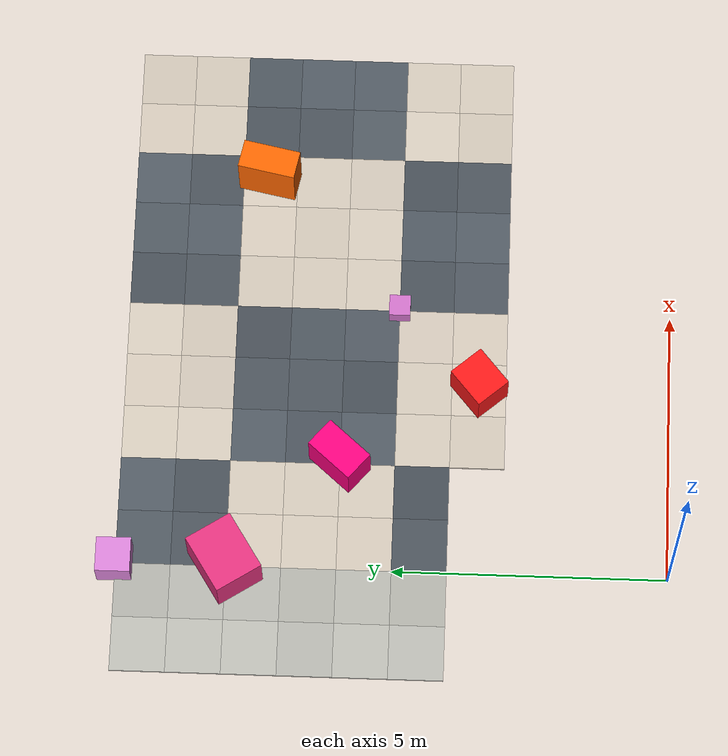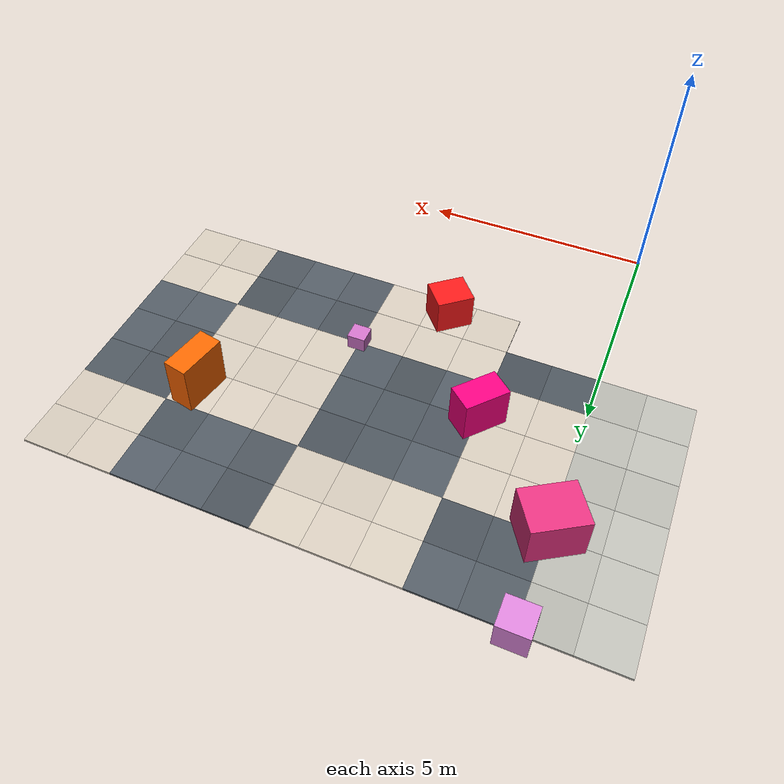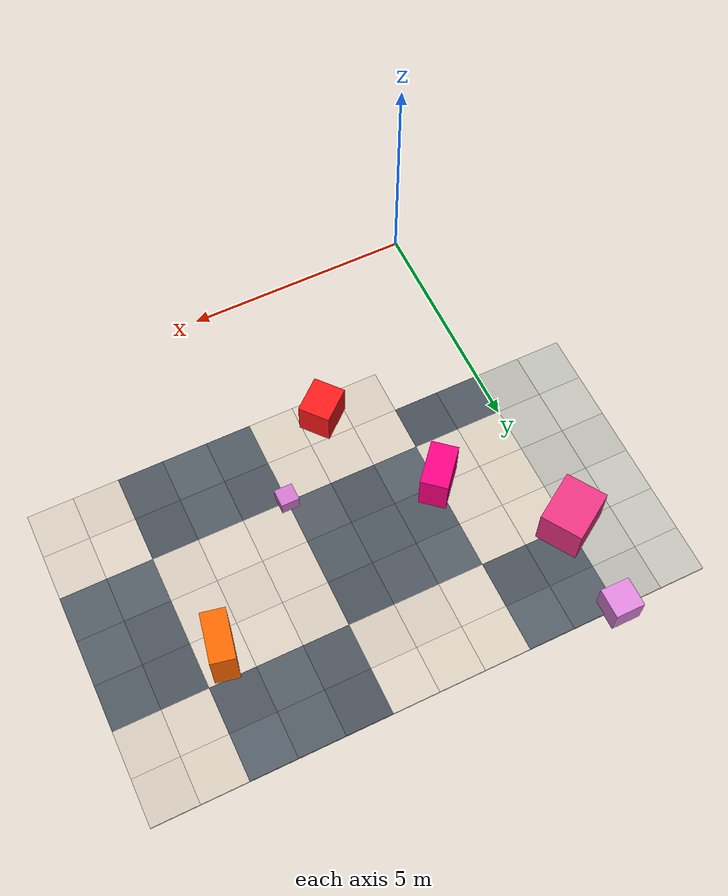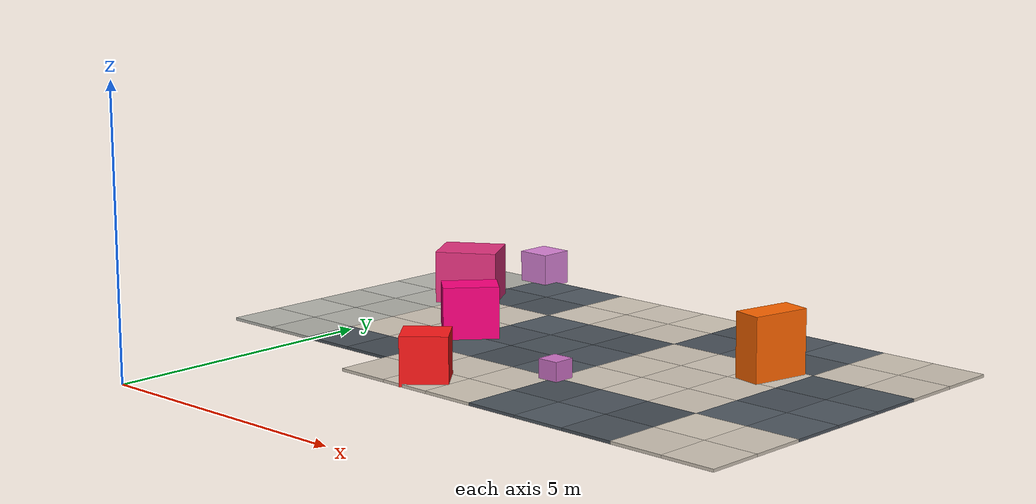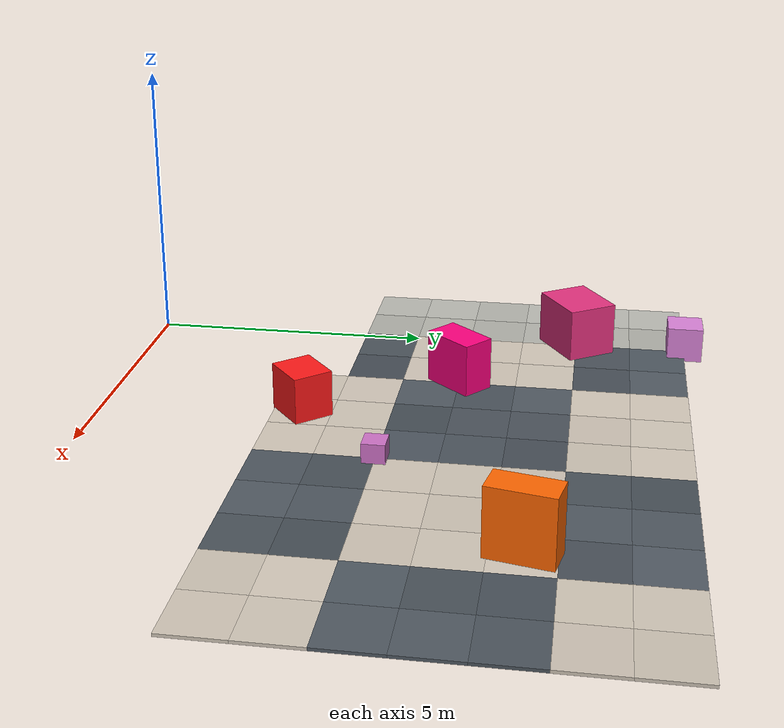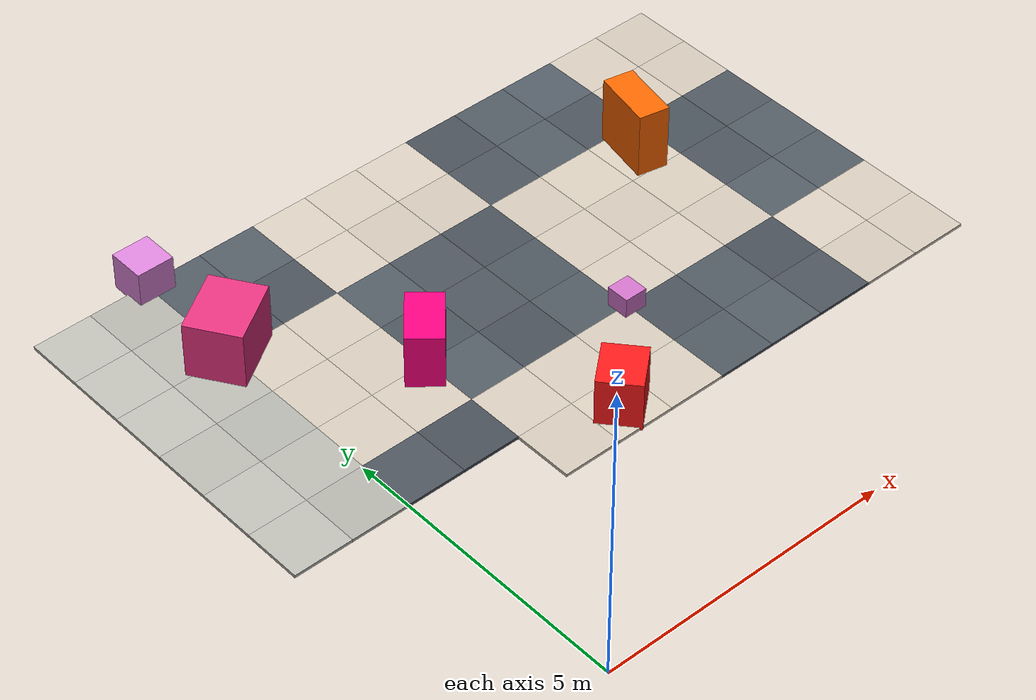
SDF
<sdf version="1.9">
 <world name="competition_world">
  <model name="t_13_12">
   <static>true</static>
   <pose>2.500 3.500 0.025 0 0 0</pose>
   <link name="link">
    <collision name="c"><geometry><box><size>1.00 1.00 0.05</size></box></geometry></collision>
    <visual name="v">
     <geometry><box><size>1.00 1.00 0.05</size></box></geometry>
     <material>
      <ambient>0.813 0.773 0.716 1</ambient>
      <diffuse>0.813 0.773 0.716 1</diffuse>
      <specular>0.060 0.060 0.060 1</specular>
     </material>
    </visual>
   </link>
  </model>
  <model name="t_13_13">
   <static>true</static>
   <pose>3.500 3.500 0.025 0 0 0</pose>
   <link name="link">
    <collision name="c"><geometry><box><size>1.00 1.00 0.05</size></box></geometry></collision>
    <visual name="v">
     <geometry><box><size>1.00 1.00 0.05</size></box></geometry>
     <material>
      <ambient>0.839 0.797 0.738 1</ambient>
      <diffuse>0.839 0.797 0.738 1</diffuse>
      <specular>0.060 0.060 0.060 1</specular>
     </material>
    </visual>
   </link>
  </model>
  <model name="t_13_14">
   <static>true</static>
   <pose>4.500 3.500 0.025 0 0 0</pose>
   <link name="link">
    <collision name="c"><geometry><box><size>1.00 1.00 0.05</size></box></geometry></collision>
    <visual name="v">
     <geometry><box><size>1.00 1.00 0.05</size></box></geometry>
     <material>
      <ambient>0.826 0.785 0.727 1</ambient>
      <diffuse>0.826 0.785 0.727 1</diffuse>
      <specular>0.060 0.060 0.060 1</specular>
     </material>
    </visual>
   </link>
  </model>
  <model name="t_13_15">
   <static>true</static>
   <pose>5.500 3.500 0.025 0 0 0</pose>
   <link name="link">
    <collision name="c"><geometry><box><size>1.00 1.00 0.05</size></box></geometry></collision>
    <visual name="v">
     <geometry><box><size>1.00 1.00 0.05</size></box></geometry>
     <material>
      <ambient>0.302 0.336 0.369 1</ambient>
      <diffuse>0.302 0.336 0.369 1</diffuse>
      <specular>0.060 0.060 0.060 1</specular>
     </material>
    </visual>
   </link>
  </model>
  <model name="t_13_16">
   <static>true</static>
   <pose>6.500 3.500 0.025 0 0 0</pose>
   <link name="link">
    <collision name="c"><geometry><box><size>1.00 1.00 0.05</size></box></geometry></collision>
    <visual name="v">
     <geometry><box><size>1.00 1.00 0.05</size></box></geometry>
     <material>
      <ambient>0.316 0.352 0.387 1</ambient>
      <diffuse>0.316 0.352 0.387 1</diffuse>
      <specular>0.060 0.060 0.060 1</specular>
     </material>
    </visual>
   </link>
  </model>
  <model name="t_13_17">
   <static>true</static>
   <pose>7.500 3.500 0.025 0 0 0</pose>
   <link name="link">
    <collision name="c"><geometry><box><size>1.00 1.00 0.05</size></box></geometry></collision>
    <visual name="v">
     <geometry><box><size>1.00 1.00 0.05</size></box></geometry>
     <material>
      <ambient>0.289 0.321 0.353 1</ambient>
      <diffuse>0.289 0.321 0.353 1</diffuse>
      <specular>0.060 0.060 0.060 1</specular>
     </material>
    </visual>
   </link>
  </model>
  <model name="t_13_18">
   <static>true</static>
   <pose>8.500 3.500 0.025 0 0 0</pose>
   <link name="link">
    <collision name="c"><geometry><box><size>1.00 1.00 0.05</size></box></geometry></collision>
    <visual name="v">
     <geometry><box><size>1.00 1.00 0.05</size></box></geometry>
     <material>
      <ambient>0.806 0.766 0.709 1</ambient>
      <diffuse>0.806 0.766 0.709 1</diffuse>
      <specular>0.060 0.060 0.060 1</specular>
     </material>
    </visual>
   </link>
  </model>
  <model name="t_13_19">
   <static>true</static>
   <pose>9.500 3.500 0.025 0 0 0</pose>
   <link name="link">
    <collision name="c"><geometry><box><size>1.00 1.00 0.05</size></box></geometry></collision>
    <visual name="v">
     <geometry><box><size>1.00 1.00 0.05</size></box></geometry>
     <material>
      <ambient>0.818 0.777 0.720 1</ambient>
      <diffuse>0.818 0.777 0.720 1</diffuse>
      <specular>0.060 0.060 0.060 1</specular>
     </material>
    </visual>
   </link>
  </model>
  <model name="t_14_08">
   <static>true</static>
   <pose>-1.500 4.500 0.025 0 0 0</pose>
   <link name="link">
    <collision name="c"><geometry><box><size>1.00 1.00 0.05</size></box></geometry></collision>
    <visual name="v">
     <geometry><box><size>1.00 1.00 0.05</size></box></geometry>
     <material>
      <ambient>0.727 0.727 0.697 1</ambient>
      <diffuse>0.727 0.727 0.697 1</diffuse>
      <specular>0.060 0.060 0.060 1</specular>
     </material>
    </visual>
   </link>
  </model>
  <model name="t_14_09">
   <static>true</static>
   <pose>-0.500 4.500 0.025 0 0 0</pose>
   <link name="link">
    <collision name="c"><geometry><box><size>1.00 1.00 0.05</size></box></geometry></collision>
    <visual name="v">
     <geometry><box><size>1.00 1.00 0.05</size></box></geometry>
     <material>
      <ambient>0.690 0.690 0.660 1</ambient>
      <diffuse>0.690 0.690 0.660 1</diffuse>
      <specular>0.060 0.060 0.060 1</specular>
     </material>
    </visual>
   </link>
  </model>
  <model name="t_14_10">
   <static>true</static>
   <pose>0.500 4.500 0.025 0 0 0</pose>
   <link name="link">
    <collision name="c"><geometry><box><size>1.00 1.00 0.05</size></box></geometry></collision>
    <visual name="v">
     <geometry><box><size>1.00 1.00 0.05</size></box></geometry>
     <material>
      <ambient>0.293 0.326 0.358 1</ambient>
      <diffuse>0.293 0.326 0.358 1</diffuse>
      <specular>0.060 0.060 0.060 1</specular>
     </material>
    </visual>
   </link>
  </model>
  <model name="t_14_11">
   <static>true</static>
   <pose>1.500 4.500 0.025 0 0 0</pose>
   <link name="link">
    <collision name="c"><geometry><box><size>1.00 1.00 0.05</size></box></geometry></collision>
    <visual name="v">
     <geometry><box><size>1.00 1.00 0.05</size></box></geometry>
     <material>
      <ambient>0.271 0.301 0.332 1</ambient>
      <diffuse>0.271 0.301 0.332 1</diffuse>
      <specular>0.060 0.060 0.060 1</specular>
     </material>
    </visual>
   </link>
  </model>
  <model name="t_14_12">
   <static>true</static>
   <pose>2.500 4.500 0.025 0 0 0</pose>
   <link name="link">
    <collision name="c"><geometry><box><size>1.00 1.00 0.05</size></box></geometry></collision>
    <visual name="v">
     <geometry><box><size>1.00 1.00 0.05</size></box></geometry>
     <material>
      <ambient>0.824 0.782 0.725 1</ambient>
      <diffuse>0.824 0.782 0.725 1</diffuse>
      <specular>0.060 0.060 0.060 1</specular>
     </material>
    </visual>
   </link>
  </model>
  <model name="t_14_13">
   <static>true</static>
   <pose>3.500 4.500 0.025 0 0 0</pose>
   <link name="link">
    <collision name="c"><geometry><box><size>1.00 1.00 0.05</size></box></geometry></collision>
    <visual name="v">
     <geometry><box><size>1.00 1.00 0.05</size></box></geometry>
     <material>
      <ambient>0.820 0.779 0.722 1</ambient>
      <diffuse>0.820 0.779 0.722 1</diffuse>
      <specular>0.060 0.060 0.060 1</specular>
     </material>
    </visual>
   </link>
  </model>
  <model name="t_14_14">
   <static>true</static>
   <pose>4.500 4.500 0.025 0 0 0</pose>
   <link name="link">
    <collision name="c"><geometry><box><size>1.00 1.00 0.05</size></box></geometry></collision>
    <visual name="v">
     <geometry><box><size>1.00 1.00 0.05</size></box></geometry>
     <material>
      <ambient>0.817 0.776 0.719 1</ambient>
      <diffuse>0.817 0.776 0.719 1</diffuse>
      <specular>0.060 0.060 0.060 1</specular>
     </material>
    </visual>
   </link>
  </model>
  <model name="t_14_15">
   <static>true</static>
   <pose>5.500 4.500 0.025 0 0 0</pose>
   <link name="link">
    <collision name="c"><geometry><box><size>1.00 1.00 0.05</size></box></geometry></collision>
    <visual name="v">
     <geometry><box><size>1.00 1.00 0.05</size></box></geometry>
     <material>
      <ambient>0.281 0.312 0.343 1</ambient>
      <diffuse>0.281 0.312 0.343 1</diffuse>
      <specular>0.060 0.060 0.060 1</specular>
     </material>
    </visual>
   </link>
  </model>
  <model name="t_14_16">
   <static>true</static>
   <pose>6.500 4.500 0.025 0 0 0</pose>
   <link name="link">
    <collision name="c"><geometry><box><size>1.00 1.00 0.05</size></box></geometry></collision>
    <visual name="v">
     <geometry><box><size>1.00 1.00 0.05</size></box></geometry>
     <material>
      <ambient>0.304 0.338 0.372 1</ambient>
      <diffuse>0.304 0.338 0.372 1</diffuse>
      <specular>0.060 0.060 0.060 1</specular>
     </material>
    </visual>
   </link>
  </model>
  <model name="t_14_17">
   <static>true</static>
   <pose>7.500 4.500 0.025 0 0 0</pose>
   <link name="link">
    <collision name="c"><geometry><box><size>1.00 1.00 0.05</size></box></geometry></collision>
    <visual name="v">
     <geometry><box><size>1.00 1.00 0.05</size></box></geometry>
     <material>
      <ambient>0.272 0.302 0.332 1</ambient>
      <diffuse>0.272 0.302 0.332 1</diffuse>
      <specular>0.060 0.060 0.060 1</specular>
     </material>
    </visual>
   </link>
  </model>
  <model name="t_14_18">
   <static>true</static>
   <pose>8.500 4.500 0.025 0 0 0</pose>
   <link name="link">
    <collision name="c"><geometry><box><size>1.00 1.00 0.05</size></box></geometry></collision>
    <visual name="v">
     <geometry><box><size>1.00 1.00 0.05</size></box></geometry>
     <material>
      <ambient>0.837 0.795 0.737 1</ambient>
      <diffuse>0.837 0.795 0.737 1</diffuse>
      <specular>0.060 0.060 0.060 1</specular>
     </material>
    </visual>
   </link>
  </model>
  <model name="t_14_19">
   <static>true</static>
   <pose>9.500 4.500 0.025 0 0 0</pose>
   <link name="link">
    <collision name="c"><geometry><box><size>1.00 1.00 0.05</size></box></geometry></collision>
    <visual name="v">
     <geometry><box><size>1.00 1.00 0.05</size></box></geometry>
     <material>
      <ambient>0.819 0.778 0.721 1</ambient>
      <diffuse>0.819 0.778 0.721 1</diffuse>
      <specular>0.060 0.060 0.060 1</specular>
     </material>
    </visual>
   </link>
  </model>
  <model name="t_15_08">
   <static>true</static>
   <pose>-1.500 5.500 0.025 0 0 0</pose>
   <link name="link">
    <collision name="c"><geometry><box><size>1.00 1.00 0.05</size></box></geometry></collision>
    <visual name="v">
     <geometry><box><size>1.00 1.00 0.05</size></box></geometry>
     <material>
      <ambient>0.732 0.732 0.702 1</ambient>
      <diffuse>0.732 0.732 0.702 1</diffuse>
      <specular>0.060 0.060 0.060 1</specular>
     </material>
    </visual>
   </link>
  </model>
  <model name="t_15_09">
   <static>true</static>
   <pose>-0.500 5.500 0.025 0 0 0</pose>
   <link name="link">
    <collision name="c"><geometry><box><size>1.00 1.00 0.05</size></box></geometry></collision>
    <visual name="v">
     <geometry><box><size>1.00 1.00 0.05</size></box></geometry>
     <material>
      <ambient>0.711 0.711 0.681 1</ambient>
      <diffuse>0.711 0.711 0.681 1</diffuse>
      <specular>0.060 0.060 0.060 1</specular>
     </material>
    </visual>
   </link>
  </model>
  <model name="t_15_10">
   <static>true</static>
   <pose>0.500 5.500 0.025 0 0 0</pose>
   <link name="link">
    <collision name="c"><geometry><box><size>1.00 1.00 0.05</size></box></geometry></collision>
    <visual name="v">
     <geometry><box><size>1.00 1.00 0.05</size></box></geometry>
     <material>
      <ambient>0.821 0.780 0.722 1</ambient>
      <diffuse>0.821 0.780 0.722 1</diffuse>
      <specular>0.060 0.060 0.060 1</specular>
     </material>
    </visual>
   </link>
  </model>
  <model name="t_15_11">
   <static>true</static>
   <pose>1.500 5.500 0.025 0 0 0</pose>
   <link name="link">
    <collision name="c"><geometry><box><size>1.00 1.00 0.05</size></box></geometry></collision>
    <visual name="v">
     <geometry><box><size>1.00 1.00 0.05</size></box></geometry>
     <material>
      <ambient>0.823 0.782 0.725 1</ambient>
      <diffuse>0.823 0.782 0.725 1</diffuse>
      <specular>0.060 0.060 0.060 1</specular>
     </material>
    </visual>
   </link>
  </model>
  <model name="t_15_12">
   <static>true</static>
   <pose>2.500 5.500 0.025 0 0 0</pose>
   <link name="link">
    <collision name="c"><geometry><box><size>1.00 1.00 0.05</size></box></geometry></collision>
    <visual name="v">
     <geometry><box><size>1.00 1.00 0.05</size></box></geometry>
     <material>
      <ambient>0.317 0.352 0.388 1</ambient>
      <diffuse>0.317 0.352 0.388 1</diffuse>
      <specular>0.060 0.060 0.060 1</specular>
     </material>
    </visual>
   </link>
  </model>
  <model name="t_15_13">
   <static>true</static>
   <pose>3.500 5.500 0.025 0 0 0</pose>
   <link name="link">
    <collision name="c"><geometry><box><size>1.00 1.00 0.05</size></box></geometry></collision>
    <visual name="v">
     <geometry><box><size>1.00 1.00 0.05</size></box></geometry>
     <material>
      <ambient>0.272 0.302 0.332 1</ambient>
      <diffuse>0.272 0.302 0.332 1</diffuse>
      <specular>0.060 0.060 0.060 1</specular>
     </material>
    </visual>
   </link>
  </model>
  <model name="t_15_14">
   <static>true</static>
   <pose>4.500 5.500 0.025 0 0 0</pose>
   <link name="link">
    <collision name="c"><geometry><box><size>1.00 1.00 0.05</size></box></geometry></collision>
    <visual name="v">
     <geometry><box><size>1.00 1.00 0.05</size></box></geometry>
     <material>
      <ambient>0.306 0.340 0.374 1</ambient>
      <diffuse>0.306 0.340 0.374 1</diffuse>
      <specular>0.060 0.060 0.060 1</specular>
     </material>
    </visual>
   </link>
  </model>
  <model name="t_15_15">
   <static>true</static>
   <pose>5.500 5.500 0.025 0 0 0</pose>
   <link name="link">
    <collision name="c"><geometry><box><size>1.00 1.00 0.05</size></box></geometry></collision>
    <visual name="v">
     <geometry><box><size>1.00 1.00 0.05</size></box></geometry>
     <material>
      <ambient>0.823 0.782 0.724 1</ambient>
      <diffuse>0.823 0.782 0.724 1</diffuse>
      <specular>0.060 0.060 0.060 1</specular>
     </material>
    </visual>
   </link>
  </model>
  <model name="t_15_16">
   <static>true</static>
   <pose>6.500 5.500 0.025 0 0 0</pose>
   <link name="link">
    <collision name="c"><geometry><box><size>1.00 1.00 0.05</size></box></geometry></collision>
    <visual name="v">
     <geometry><box><size>1.00 1.00 0.05</size></box></geometry>
     <material>
      <ambient>0.829 0.787 0.729 1</ambient>
      <diffuse>0.829 0.787 0.729 1</diffuse>
      <specular>0.060 0.060 0.060 1</specular>
     </material>
    </visual>
   </link>
  </model>
  <model name="t_15_17">
   <static>true</static>
   <pose>7.500 5.500 0.025 0 0 0</pose>
   <link name="link">
    <collision name="c"><geometry><box><size>1.00 1.00 0.05</size></box></geometry></collision>
    <visual name="v">
     <geometry><box><size>1.00 1.00 0.05</size></box></geometry>
     <material>
      <ambient>0.807 0.766 0.710 1</ambient>
      <diffuse>0.807 0.766 0.710 1</diffuse>
      <specular>0.060 0.060 0.060 1</specular>
     </material>
    </visual>
   </link>
  </model>
  <model name="t_15_18">
   <static>true</static>
   <pose>8.500 5.500 0.025 0 0 0</pose>
   <link name="link">
    <collision name="c"><geometry><box><size>1.00 1.00 0.05</size></box></geometry></collision>
    <visual name="v">
     <geometry><box><size>1.00 1.00 0.05</size></box></geometry>
     <material>
      <ambient>0.315 0.350 0.385 1</ambient>
      <diffuse>0.315 0.350 0.385 1</diffuse>
      <specular>0.060 0.060 0.060 1</specular>
     </material>
    </visual>
   </link>
  </model>
  <model name="t_15_19">
   <static>true</static>
   <pose>9.500 5.500 0.025 0 0 0</pose>
   <link name="link">
    <collision name="c"><geometry><box><size>1.00 1.00 0.05</size></box></geometry></collision>
    <visual name="v">
     <geometry><box><size>1.00 1.00 0.05</size></box></geometry>
     <material>
      <ambient>0.313 0.348 0.382 1</ambient>
      <diffuse>0.313 0.348 0.382 1</diffuse>
      <specular>0.060 0.060 0.060 1</specular>
     </material>
    </visual>
   </link>
  </model>
  <model name="t_16_08">
   <static>true</static>
   <pose>-1.500 6.500 0.025 0 0 0</pose>
   <link name="link">
    <collision name="c"><geometry><box><size>1.00 1.00 0.05</size></box></geometry></collision>
    <visual name="v">
     <geometry><box><size>1.00 1.00 0.05</size></box></geometry>
     <material>
      <ambient>0.709 0.709 0.679 1</ambient>
      <diffuse>0.709 0.709 0.679 1</diffuse>
      <specular>0.060 0.060 0.060 1</specular>
     </material>
    </visual>
   </link>
  </model>
  <model name="t_16_09">
   <static>true</static>
   <pose>-0.500 6.500 0.025 0 0 0</pose>
   <link name="link">
    <collision name="c"><geometry><box><size>1.00 1.00 0.05</size></box></geometry></collision>
    <visual name="v">
     <geometry><box><size>1.00 1.00 0.05</size></box></geometry>
     <material>
      <ambient>0.695 0.695 0.665 1</ambient>
      <diffuse>0.695 0.695 0.665 1</diffuse>
      <specular>0.060 0.060 0.060 1</specular>
     </material>
    </visual>
   </link>
  </model>
  <model name="t_16_10">
   <static>true</static>
   <pose>0.500 6.500 0.025 0 0 0</pose>
   <link name="link">
    <collision name="c"><geometry><box><size>1.00 1.00 0.05</size></box></geometry></collision>
    <visual name="v">
     <geometry><box><size>1.00 1.00 0.05</size></box></geometry>
     <material>
      <ambient>0.822 0.781 0.723 1</ambient>
      <diffuse>0.822 0.781 0.723 1</diffuse>
      <specular>0.060 0.060 0.060 1</specular>
     </material>
    </visual>
   </link>
  </model>
  <model name="t_16_11">
   <static>true</static>
   <pose>1.500 6.500 0.025 0 0 0</pose>
   <link name="link">
    <collision name="c"><geometry><box><size>1.00 1.00 0.05</size></box></geometry></collision>
    <visual name="v">
     <geometry><box><size>1.00 1.00 0.05</size></box></geometry>
     <material>
      <ambient>0.818 0.777 0.720 1</ambient>
      <diffuse>0.818 0.777 0.720 1</diffuse>
      <specular>0.060 0.060 0.060 1</specular>
     </material>
    </visual>
   </link>
  </model>
  <model name="t_16_12">
   <static>true</static>
   <pose>2.500 6.500 0.025 0 0 0</pose>
   <link name="link">
    <collision name="c"><geometry><box><size>1.00 1.00 0.05</size></box></geometry></collision>
    <visual name="v">
     <geometry><box><size>1.00 1.00 0.05</size></box></geometry>
     <material>
      <ambient>0.291 0.323 0.355 1</ambient>
      <diffuse>0.291 0.323 0.355 1</diffuse>
      <specular>0.060 0.060 0.060 1</specular>
     </material>
    </visual>
   </link>
  </model>
  <model name="t_16_13">
   <static>true</static>
   <pose>3.500 6.500 0.025 0 0 0</pose>
   <link name="link">
    <collision name="c"><geometry><box><size>1.00 1.00 0.05</size></box></geometry></collision>
    <visual name="v">
     <geometry><box><size>1.00 1.00 0.05</size></box></geometry>
     <material>
      <ambient>0.292 0.325 0.357 1</ambient>
      <diffuse>0.292 0.325 0.357 1</diffuse>
      <specular>0.060 0.060 0.060 1</specular>
     </material>
    </visual>
   </link>
  </model>
  <model name="t_16_14">
   <static>true</static>
   <pose>4.500 6.500 0.025 0 0 0</pose>
   <link name="link">
    <collision name="c"><geometry><box><size>1.00 1.00 0.05</size></box></geometry></collision>
    <visual name="v">
     <geometry><box><size>1.00 1.00 0.05</size></box></geometry>
     <material>
      <ambient>0.295 0.328 0.361 1</ambient>
      <diffuse>0.295 0.328 0.361 1</diffuse>
      <specular>0.060 0.060 0.060 1</specular>
     </material>
    </visual>
   </link>
  </model>
  <model name="t_16_15">
   <static>true</static>
   <pose>5.500 6.500 0.025 0 0 0</pose>
   <link name="link">
    <collision name="c"><geometry><box><size>1.00 1.00 0.05</size></box></geometry></collision>
    <visual name="v">
     <geometry><box><size>1.00 1.00 0.05</size></box></geometry>
     <material>
      <ambient>0.815 0.774 0.717 1</ambient>
      <diffuse>0.815 0.774 0.717 1</diffuse>
      <specular>0.060 0.060 0.060 1</specular>
     </material>
    </visual>
   </link>
  </model>
  <model name="t_16_16">
   <static>true</static>
   <pose>6.500 6.500 0.025 0 0 0</pose>
   <link name="link">
    <collision name="c"><geometry><box><size>1.00 1.00 0.05</size></box></geometry></collision>
    <visual name="v">
     <geometry><box><size>1.00 1.00 0.05</size></box></geometry>
     <material>
      <ambient>0.805 0.765 0.708 1</ambient>
      <diffuse>0.805 0.765 0.708 1</diffuse>
      <specular>0.060 0.060 0.060 1</specular>
     </material>
    </visual>
   </link>
  </model>
  <model name="t_16_17">
   <static>true</static>
   <pose>7.500 6.500 0.025 0 0 0</pose>
   <link name="link">
    <collision name="c"><geometry><box><size>1.00 1.00 0.05</size></box></geometry></collision>
    <visual name="v">
     <geometry><box><size>1.00 1.00 0.05</size></box></geometry>
     <material>
      <ambient>0.820 0.779 0.721 1</ambient>
      <diffuse>0.820 0.779 0.721 1</diffuse>
      <specular>0.060 0.060 0.060 1</specular>
     </material>
    </visual>
   </link>
  </model>
  <model name="t_16_18">
   <static>true</static>
   <pose>8.500 6.500 0.025 0 0 0</pose>
   <link name="link">
    <collision name="c"><geometry><box><size>1.00 1.00 0.05</size></box></geometry></collision>
    <visual name="v">
     <geometry><box><size>1.00 1.00 0.05</size></box></geometry>
     <material>
      <ambient>0.285 0.317 0.349 1</ambient>
      <diffuse>0.285 0.317 0.349 1</diffuse>
      <specular>0.060 0.060 0.060 1</specular>
     </material>
    </visual>
   </link>
  </model>
  <model name="t_16_19">
   <static>true</static>
   <pose>9.500 6.500 0.025 0 0 0</pose>
   <link name="link">
    <collision name="c"><geometry><box><size>1.00 1.00 0.05</size></box></geometry></collision>
    <visual name="v">
     <geometry><box><size>1.00 1.00 0.05</size></box></geometry>
     <material>
      <ambient>0.313 0.348 0.382 1</ambient>
      <diffuse>0.313 0.348 0.382 1</diffuse>
      <specular>0.060 0.060 0.060 1</specular>
     </material>
    </visual>
   </link>
  </model>
  <model name="t_17_08">
   <static>true</static>
   <pose>-1.500 7.500 0.025 0 0 0</pose>
   <link name="link">
    <collision name="c"><geometry><box><size>1.00 1.00 0.05</size></box></geometry></collision>
    <visual name="v">
     <geometry><box><size>1.00 1.00 0.05</size></box></geometry>
     <material>
      <ambient>0.738 0.738 0.708 1</ambient>
      <diffuse>0.738 0.738 0.708 1</diffuse>
      <specular>0.060 0.060 0.060 1</specular>
     </material>
    </visual>
   </link>
  </model>
  <model name="t_17_09">
   <static>true</static>
   <pose>-0.500 7.500 0.025 0 0 0</pose>
   <link name="link">
    <collision name="c"><geometry><box><size>1.00 1.00 0.05</size></box></geometry></collision>
    <visual name="v">
     <geometry><box><size>1.00 1.00 0.05</size></box></geometry>
     <material>
      <ambient>0.713 0.713 0.683 1</ambient>
      <diffuse>0.713 0.713 0.683 1</diffuse>
      <specular>0.060 0.060 0.060 1</specular>
     </material>
    </visual>
   </link>
  </model>
  <model name="t_17_10">
   <static>true</static>
   <pose>0.500 7.500 0.025 0 0 0</pose>
   <link name="link">
    <collision name="c"><geometry><box><size>1.00 1.00 0.05</size></box></geometry></collision>
    <visual name="v">
     <geometry><box><size>1.00 1.00 0.05</size></box></geometry>
     <material>
      <ambient>0.831 0.789 0.731 1</ambient>
      <diffuse>0.831 0.789 0.731 1</diffuse>
      <specular>0.060 0.060 0.060 1</specular>
     </material>
    </visual>
   </link>
  </model>
  <model name="t_17_11">
   <static>true</static>
   <pose>1.500 7.500 0.025 0 0 0</pose>
   <link name="link">
    <collision name="c"><geometry><box><size>1.00 1.00 0.05</size></box></geometry></collision>
    <visual name="v">
     <geometry><box><size>1.00 1.00 0.05</size></box></geometry>
     <material>
      <ambient>0.824 0.783 0.725 1</ambient>
      <diffuse>0.824 0.783 0.725 1</diffuse>
      <specular>0.060 0.060 0.060 1</specular>
     </material>
    </visual>
   </link>
  </model>
  <model name="t_17_12">
   <static>true</static>
   <pose>2.500 7.500 0.025 0 0 0</pose>
   <link name="link">
    <collision name="c"><geometry><box><size>1.00 1.00 0.05</size></box></geometry></collision>
    <visual name="v">
     <geometry><box><size>1.00 1.00 0.05</size></box></geometry>
     <material>
      <ambient>0.316 0.351 0.386 1</ambient>
      <diffuse>0.316 0.351 0.386 1</diffuse>
      <specular>0.060 0.060 0.060 1</specular>
     </material>
    </visual>
   </link>
  </model>
  <model name="t_17_13">
   <static>true</static>
   <pose>3.500 7.500 0.025 0 0 0</pose>
   <link name="link">
    <collision name="c"><geometry><box><size>1.00 1.00 0.05</size></box></geometry></collision>
    <visual name="v">
     <geometry><box><size>1.00 1.00 0.05</size></box></geometry>
     <material>
      <ambient>0.293 0.325 0.358 1</ambient>
      <diffuse>0.293 0.325 0.358 1</diffuse>
      <specular>0.060 0.060 0.060 1</specular>
     </material>
    </visual>
   </link>
  </model>
  <model name="t_17_14">
   <static>true</static>
   <pose>4.500 7.500 0.025 0 0 0</pose>
   <link name="link">
    <collision name="c"><geometry><box><size>1.00 1.00 0.05</size></box></geometry></collision>
    <visual name="v">
     <geometry><box><size>1.00 1.00 0.05</size></box></geometry>
     <material>
      <ambient>0.275 0.305 0.336 1</ambient>
      <diffuse>0.275 0.305 0.336 1</diffuse>
      <specular>0.060 0.060 0.060 1</specular>
     </material>
    </visual>
   </link>
  </model>
  <model name="t_17_15">
   <static>true</static>
   <pose>5.500 7.500 0.025 0 0 0</pose>
   <link name="link">
    <collision name="c"><geometry><box><size>1.00 1.00 0.05</size></box></geometry></collision>
    <visual name="v">
     <geometry><box><size>1.00 1.00 0.05</size></box></geometry>
     <material>
      <ambient>0.808 0.768 0.711 1</ambient>
      <diffuse>0.808 0.768 0.711 1</diffuse>
      <specular>0.060 0.060 0.060 1</specular>
     </material>
    </visual>
   </link>
  </model>
  <model name="t_17_16">
   <static>true</static>
   <pose>6.500 7.500 0.025 0 0 0</pose>
   <link name="link">
    <collision name="c"><geometry><box><size>1.00 1.00 0.05</size></box></geometry></collision>
    <visual name="v">
     <geometry><box><size>1.00 1.00 0.05</size></box></geometry>
     <material>
      <ambient>0.830 0.788 0.730 1</ambient>
      <diffuse>0.830 0.788 0.730 1</diffuse>
      <specular>0.060 0.060 0.060 1</specular>
     </material>
    </visual>
   </link>
  </model>
  <model name="t_17_17">
   <static>true</static>
   <pose>7.500 7.500 0.025 0 0 0</pose>
   <link name="link">
    <collision name="c"><geometry><box><size>1.00 1.00 0.05</size></box></geometry></collision>
    <visual name="v">
     <geometry><box><size>1.00 1.00 0.05</size></box></geometry>
     <material>
      <ambient>0.839 0.797 0.739 1</ambient>
      <diffuse>0.839 0.797 0.739 1</diffuse>
      <specular>0.060 0.060 0.060 1</specular>
     </material>
    </visual>
   </link>
  </model>
  <model name="t_17_18">
   <static>true</static>
   <pose>8.500 7.500 0.025 0 0 0</pose>
   <link name="link">
    <collision name="c"><geometry><box><size>1.00 1.00 0.05</size></box></geometry></collision>
    <visual name="v">
     <geometry><box><size>1.00 1.00 0.05</size></box></geometry>
     <material>
      <ambient>0.282 0.314 0.345 1</ambient>
      <diffuse>0.282 0.314 0.345 1</diffuse>
      <specular>0.060 0.060 0.060 1</specular>
     </material>
    </visual>
   </link>
  </model>
  <model name="t_17_19">
   <static>true</static>
   <pose>9.500 7.500 0.025 0 0 0</pose>
   <link name="link">
    <collision name="c"><geometry><box><size>1.00 1.00 0.05</size></box></geometry></collision>
    <visual name="v">
     <geometry><box><size>1.00 1.00 0.05</size></box></geometry>
     <material>
      <ambient>0.296 0.329 0.362 1</ambient>
      <diffuse>0.296 0.329 0.362 1</diffuse>
      <specular>0.060 0.060 0.060 1</specular>
     </material>
    </visual>
   </link>
  </model>
  <model name="t_18_08">
   <static>true</static>
   <pose>-1.500 8.500 0.025 0 0 0</pose>
   <link name="link">
    <collision name="c"><geometry><box><size>1.00 1.00 0.05</size></box></geometry></collision>
    <visual name="v">
     <geometry><box><size>1.00 1.00 0.05</size></box></geometry>
     <material>
      <ambient>0.737 0.737 0.707 1</ambient>
      <diffuse>0.737 0.737 0.707 1</diffuse>
      <specular>0.060 0.060 0.060 1</specular>
     </material>
    </visual>
   </link>
  </model>
  <model name="t_18_09">
   <static>true</static>
   <pose>-0.500 8.500 0.025 0 0 0</pose>
   <link name="link">
    <collision name="c"><geometry><box><size>1.00 1.00 0.05</size></box></geometry></collision>
    <visual name="v">
     <geometry><box><size>1.00 1.00 0.05</size></box></geometry>
     <material>
      <ambient>0.709 0.709 0.679 1</ambient>
      <diffuse>0.709 0.709 0.679 1</diffuse>
      <specular>0.060 0.060 0.060 1</specular>
     </material>
    </visual>
   </link>
  </model>
  <model name="t_18_10">
   <static>true</static>
   <pose>0.500 8.500 0.025 0 0 0</pose>
   <link name="link">
    <collision name="c"><geometry><box><size>1.00 1.00 0.05</size></box></geometry></collision>
    <visual name="v">
     <geometry><box><size>1.00 1.00 0.05</size></box></geometry>
     <material>
      <ambient>0.292 0.325 0.357 1</ambient>
      <diffuse>0.292 0.325 0.357 1</diffuse>
      <specular>0.060 0.060 0.060 1</specular>
     </material>
    </visual>
   </link>
  </model>
  <model name="t_18_11">
   <static>true</static>
   <pose>1.500 8.500 0.025 0 0 0</pose>
   <link name="link">
    <collision name="c"><geometry><box><size>1.00 1.00 0.05</size></box></geometry></collision>
    <visual name="v">
     <geometry><box><size>1.00 1.00 0.05</size></box></geometry>
     <material>
      <ambient>0.280 0.311 0.342 1</ambient>
      <diffuse>0.280 0.311 0.342 1</diffuse>
      <specular>0.060 0.060 0.060 1</specular>
     </material>
    </visual>
   </link>
  </model>
  <model name="t_18_12">
   <static>true</static>
   <pose>2.500 8.500 0.025 0 0 0</pose>
   <link name="link">
    <collision name="c"><geometry><box><size>1.00 1.00 0.05</size></box></geometry></collision>
    <visual name="v">
     <geometry><box><size>1.00 1.00 0.05</size></box></geometry>
     <material>
      <ambient>0.833 0.791 0.733 1</ambient>
      <diffuse>0.833 0.791 0.733 1</diffuse>
      <specular>0.060 0.060 0.060 1</specular>
     </material>
    </visual>
   </link>
  </model>
  <model name="t_18_13">
   <static>true</static>
   <pose>3.500 8.500 0.025 0 0 0</pose>
   <link name="link">
    <collision name="c"><geometry><box><size>1.00 1.00 0.05</size></box></geometry></collision>
    <visual name="v">
     <geometry><box><size>1.00 1.00 0.05</size></box></geometry>
     <material>
      <ambient>0.802 0.762 0.706 1</ambient>
      <diffuse>0.802 0.762 0.706 1</diffuse>
      <specular>0.060 0.060 0.060 1</specular>
     </material>
    </visual>
   </link>
  </model>
  <model name="t_18_14">
   <static>true</static>
   <pose>4.500 8.500 0.025 0 0 0</pose>
   <link name="link">
    <collision name="c"><geometry><box><size>1.00 1.00 0.05</size></box></geometry></collision>
    <visual name="v">
     <geometry><box><size>1.00 1.00 0.05</size></box></geometry>
     <material>
      <ambient>0.801 0.761 0.705 1</ambient>
      <diffuse>0.801 0.761 0.705 1</diffuse>
      <specular>0.060 0.060 0.060 1</specular>
     </material>
    </visual>
   </link>
  </model>
  <model name="t_18_15">
   <static>true</static>
   <pose>5.500 8.500 0.025 0 0 0</pose>
   <link name="link">
    <collision name="c"><geometry><box><size>1.00 1.00 0.05</size></box></geometry></collision>
    <visual name="v">
     <geometry><box><size>1.00 1.00 0.05</size></box></geometry>
     <material>
      <ambient>0.290 0.322 0.354 1</ambient>
      <diffuse>0.290 0.322 0.354 1</diffuse>
      <specular>0.060 0.060 0.060 1</specular>
     </material>
    </visual>
   </link>
  </model>
  <model name="t_18_16">
   <static>true</static>
   <pose>6.500 8.500 0.025 0 0 0</pose>
   <link name="link">
    <collision name="c"><geometry><box><size>1.00 1.00 0.05</size></box></geometry></collision>
    <visual name="v">
     <geometry><box><size>1.00 1.00 0.05</size></box></geometry>
     <material>
      <ambient>0.313 0.348 0.383 1</ambient>
      <diffuse>0.313 0.348 0.383 1</diffuse>
      <specular>0.060 0.060 0.060 1</specular>
     </material>
    </visual>
   </link>
  </model>
  <model name="t_18_17">
   <static>true</static>
   <pose>7.500 8.500 0.025 0 0 0</pose>
   <link name="link">
    <collision name="c"><geometry><box><size>1.00 1.00 0.05</size></box></geometry></collision>
    <visual name="v">
     <geometry><box><size>1.00 1.00 0.05</size></box></geometry>
     <material>
      <ambient>0.284 0.315 0.347 1</ambient>
      <diffuse>0.284 0.315 0.347 1</diffuse>
      <specular>0.060 0.060 0.060 1</specular>
     </material>
    </visual>
   </link>
  </model>
  <model name="t_18_18">
   <static>true</static>
   <pose>8.500 8.500 0.025 0 0 0</pose>
   <link name="link">
    <collision name="c"><geometry><box><size>1.00 1.00 0.05</size></box></geometry></collision>
    <visual name="v">
     <geometry><box><size>1.00 1.00 0.05</size></box></geometry>
     <material>
      <ambient>0.819 0.778 0.720 1</ambient>
      <diffuse>0.819 0.778 0.720 1</diffuse>
      <specular>0.060 0.060 0.060 1</specular>
     </material>
    </visual>
   </link>
  </model>
  <model name="t_18_19">
   <static>true</static>
   <pose>9.500 8.500 0.025 0 0 0</pose>
   <link name="link">
    <collision name="c"><geometry><box><size>1.00 1.00 0.05</size></box></geometry></collision>
    <visual name="v">
     <geometry><box><size>1.00 1.00 0.05</size></box></geometry>
     <material>
      <ambient>0.804 0.763 0.707 1</ambient>
      <diffuse>0.804 0.763 0.707 1</diffuse>
      <specular>0.060 0.060 0.060 1</specular>
     </material>
    </visual>
   </link>
  </model>
  <model name="t_19_08">
   <static>true</static>
   <pose>-1.500 9.500 0.025 0 0 0</pose>
   <link name="link">
    <collision name="c"><geometry><box><size>1.00 1.00 0.05</size></box></geometry></collision>
    <visual name="v">
     <geometry><box><size>1.00 1.00 0.05</size></box></geometry>
     <material>
      <ambient>0.738 0.738 0.708 1</ambient>
      <diffuse>0.738 0.738 0.708 1</diffuse>
      <specular>0.060 0.060 0.060 1</specular>
     </material>
    </visual>
   </link>
  </model>
  <model name="t_19_09">
   <static>true</static>
   <pose>-0.500 9.500 0.025 0 0 0</pose>
   <link name="link">
    <collision name="c"><geometry><box><size>1.00 1.00 0.05</size></box></geometry></collision>
    <visual name="v">
     <geometry><box><size>1.00 1.00 0.05</size></box></geometry>
     <material>
      <ambient>0.691 0.691 0.661 1</ambient>
      <diffuse>0.691 0.691 0.661 1</diffuse>
      <specular>0.060 0.060 0.060 1</specular>
     </material>
    </visual>
   </link>
  </model>
  <model name="t_19_10">
   <static>true</static>
   <pose>0.500 9.500 0.025 0 0 0</pose>
   <link name="link">
    <collision name="c"><geometry><box><size>1.00 1.00 0.05</size></box></geometry></collision>
    <visual name="v">
     <geometry><box><size>1.00 1.00 0.05</size></box></geometry>
     <material>
      <ambient>0.311 0.346 0.380 1</ambient>
      <diffuse>0.311 0.346 0.380 1</diffuse>
      <specular>0.060 0.060 0.060 1</specular>
     </material>
    </visual>
   </link>
  </model>
  <model name="t_19_11">
   <static>true</static>
   <pose>1.500 9.500 0.025 0 0 0</pose>
   <link name="link">
    <collision name="c"><geometry><box><size>1.00 1.00 0.05</size></box></geometry></collision>
    <visual name="v">
     <geometry><box><size>1.00 1.00 0.05</size></box></geometry>
     <material>
      <ambient>0.321 0.356 0.392 1</ambient>
      <diffuse>0.321 0.356 0.392 1</diffuse>
      <specular>0.060 0.060 0.060 1</specular>
     </material>
    </visual>
   </link>
  </model>
  <model name="t_19_12">
   <static>true</static>
   <pose>2.500 9.500 0.025 0 0 0</pose>
   <link name="link">
    <collision name="c"><geometry><box><size>1.00 1.00 0.05</size></box></geometry></collision>
    <visual name="v">
     <geometry><box><size>1.00 1.00 0.05</size></box></geometry>
     <material>
      <ambient>0.837 0.795 0.736 1</ambient>
      <diffuse>0.837 0.795 0.736 1</diffuse>
      <specular>0.060 0.060 0.060 1</specular>
     </material>
    </visual>
   </link>
  </model>
  <model name="t_19_13">
   <static>true</static>
   <pose>3.500 9.500 0.025 0 0 0</pose>
   <link name="link">
    <collision name="c"><geometry><box><size>1.00 1.00 0.05</size></box></geometry></collision>
    <visual name="v">
     <geometry><box><size>1.00 1.00 0.05</size></box></geometry>
     <material>
      <ambient>0.830 0.789 0.731 1</ambient>
      <diffuse>0.830 0.789 0.731 1</diffuse>
      <specular>0.060 0.060 0.060 1</specular>
     </material>
    </visual>
   </link>
  </model>
  <model name="t_19_14">
   <static>true</static>
   <pose>4.500 9.500 0.025 0 0 0</pose>
   <link name="link">
    <collision name="c"><geometry><box><size>1.00 1.00 0.05</size></box></geometry></collision>
    <visual name="v">
     <geometry><box><size>1.00 1.00 0.05</size></box></geometry>
     <material>
      <ambient>0.837 0.795 0.737 1</ambient>
      <diffuse>0.837 0.795 0.737 1</diffuse>
      <specular>0.060 0.060 0.060 1</specular>
     </material>
    </visual>
   </link>
  </model>
  <model name="t_19_15">
   <static>true</static>
   <pose>5.500 9.500 0.025 0 0 0</pose>
   <link name="link">
    <collision name="c"><geometry><box><size>1.00 1.00 0.05</size></box></geometry></collision>
    <visual name="v">
     <geometry><box><size>1.00 1.00 0.05</size></box></geometry>
     <material>
      <ambient>0.276 0.307 0.338 1</ambient>
      <diffuse>0.276 0.307 0.338 1</diffuse>
      <specular>0.060 0.060 0.060 1</specular>
     </material>
    </visual>
   </link>
  </model>
  <model name="t_19_16">
   <static>true</static>
   <pose>6.500 9.500 0.025 0 0 0</pose>
   <link name="link">
    <collision name="c"><geometry><box><size>1.00 1.00 0.05</size></box></geometry></collision>
    <visual name="v">
     <geometry><box><size>1.00 1.00 0.05</size></box></geometry>
     <material>
      <ambient>0.308 0.342 0.376 1</ambient>
      <diffuse>0.308 0.342 0.376 1</diffuse>
      <specular>0.060 0.060 0.060 1</specular>
     </material>
    </visual>
   </link>
  </model>
  <model name="t_19_17">
   <static>true</static>
   <pose>7.500 9.500 0.025 0 0 0</pose>
   <link name="link">
    <collision name="c"><geometry><box><size>1.00 1.00 0.05</size></box></geometry></collision>
    <visual name="v">
     <geometry><box><size>1.00 1.00 0.05</size></box></geometry>
     <material>
      <ambient>0.322 0.358 0.394 1</ambient>
      <diffuse>0.322 0.358 0.394 1</diffuse>
      <specular>0.060 0.060 0.060 1</specular>
     </material>
    </visual>
   </link>
  </model>
  <model name="t_19_18">
   <static>true</static>
   <pose>8.500 9.500 0.025 0 0 0</pose>
   <link name="link">
    <collision name="c"><geometry><box><size>1.00 1.00 0.05</size></box></geometry></collision>
    <visual name="v">
     <geometry><box><size>1.00 1.00 0.05</size></box></geometry>
     <material>
      <ambient>0.821 0.780 0.722 1</ambient>
      <diffuse>0.821 0.780 0.722 1</diffuse>
      <specular>0.060 0.060 0.060 1</specular>
     </material>
    </visual>
   </link>
  </model>
  <model name="t_19_19">
   <static>true</static>
   <pose>9.500 9.500 0.025 0 0 0</pose>
   <link name="link">
    <collision name="c"><geometry><box><size>1.00 1.00 0.05</size></box></geometry></collision>
    <visual name="v">
     <geometry><box><size>1.00 1.00 0.05</size></box></geometry>
     <material>
      <ambient>0.801 0.761 0.705 1</ambient>
      <diffuse>0.801 0.761 0.705 1</diffuse>
      <specular>0.060 0.060 0.060 1</specular>
     </material>
    </visual>
   </link>
  </model>
  <model name="lm_00">
   <static>true</static>
   <pose>3.50 3.50 0.43 0 0 2.275</pose>
   <link name="link">
    <collision name="c"><geometry><box><size>0.70 0.81 0.85</size></box></geometry></collision>
    <visual name="v">
     <geometry><box><size>0.70 0.81 0.85</size></box></geometry>
     <material>
      <ambient>1.000 0.100 0.100 1</ambient>
      <diffuse>1.000 0.100 0.100 1</diffuse>
      <specular>0.300 0.300 0.300 1</specular>
     </material>
    </visual>
   </link>
  </model>
  <model name="lm_04">
   <static>true</static>
   <pose>7.50 7.50 0.59 0 0 1.369</pose>
   <link name="link">
    <collision name="c"><geometry><box><size>1.06 0.52 1.17</size></box></geometry></collision>
    <visual name="v">
     <geometry><box><size>1.06 0.52 1.17</size></box></geometry>
     <material>
      <ambient>1.000 0.400 0.000 1</ambient>
      <diffuse>1.000 0.400 0.000 1</diffuse>
      <specular>0.300 0.300 0.300 1</specular>
     </material>
    </visual>
   </link>
  </model>
  <model name="lm_08">
   <static>true</static>
   <pose>0.00 8.00 0.50 0 0 2.141</pose>
   <link name="link">
    <collision name="c"><geometry><box><size>0.92 1.13 1.00</size></box></geometry></collision>
    <visual name="v">
     <geometry><box><size>0.92 1.13 1.00</size></box></geometry>
     <material>
      <ambient>0.900 0.200 0.500 1</ambient>
      <diffuse>0.900 0.200 0.500 1</diffuse>
      <specular>0.300 0.300 0.300 1</specular>
     </material>
    </visual>
   </link>
  </model>
  <model name="lm_12">
   <static>true</static>
   <pose>2.00 6.00 0.49 0 0 2.431</pose>
   <link name="link">
    <collision name="c"><geometry><box><size>0.59 0.98 0.98</size></box></geometry></collision>
    <visual name="v">
     <geometry><box><size>0.59 0.98 0.98</size></box></geometry>
     <material>
      <ambient>1.000 0.000 0.500 1</ambient>
      <diffuse>1.000 0.000 0.500 1</diffuse>
      <specular>0.300 0.300 0.300 1</specular>
     </material>
    </visual>
   </link>
  </model>
  <model name="deco_03">
   <static>true</static>
   <pose>0.00 10.00 0.31 0 0 0.000</pose>
   <link name="link">
    <collision name="c"><geometry><box><size>0.63 0.63 0.63</size></box></geometry></collision>
    <visual name="v">
     <geometry><box><size>0.63 0.63 0.63</size></box></geometry>
     <material>
      <ambient>0.856 0.516 0.850 1</ambient>
      <diffuse>0.856 0.516 0.850 1</diffuse>
      <specular>0.300 0.300 0.300 1</specular>
     </material>
    </visual>
   </link>
  </model>
  <model name="deco_07">
   <static>true</static>
   <pose>5.00 5.00 0.19 0 0 0.000</pose>
   <link name="link">
    <collision name="c"><geometry><box><size>0.39 0.39 0.39</size></box></geometry></collision>
    <visual name="v">
     <geometry><box><size>0.39 0.39 0.39</size></box></geometry>
     <material>
      <ambient>0.810 0.447 0.781 1</ambient>
      <diffuse>0.810 0.447 0.781 1</diffuse>
      <specular>0.300 0.300 0.300 1</specular>
     </material>
    </visual>
   </link>
  </model>
 </world>
</sdf>
